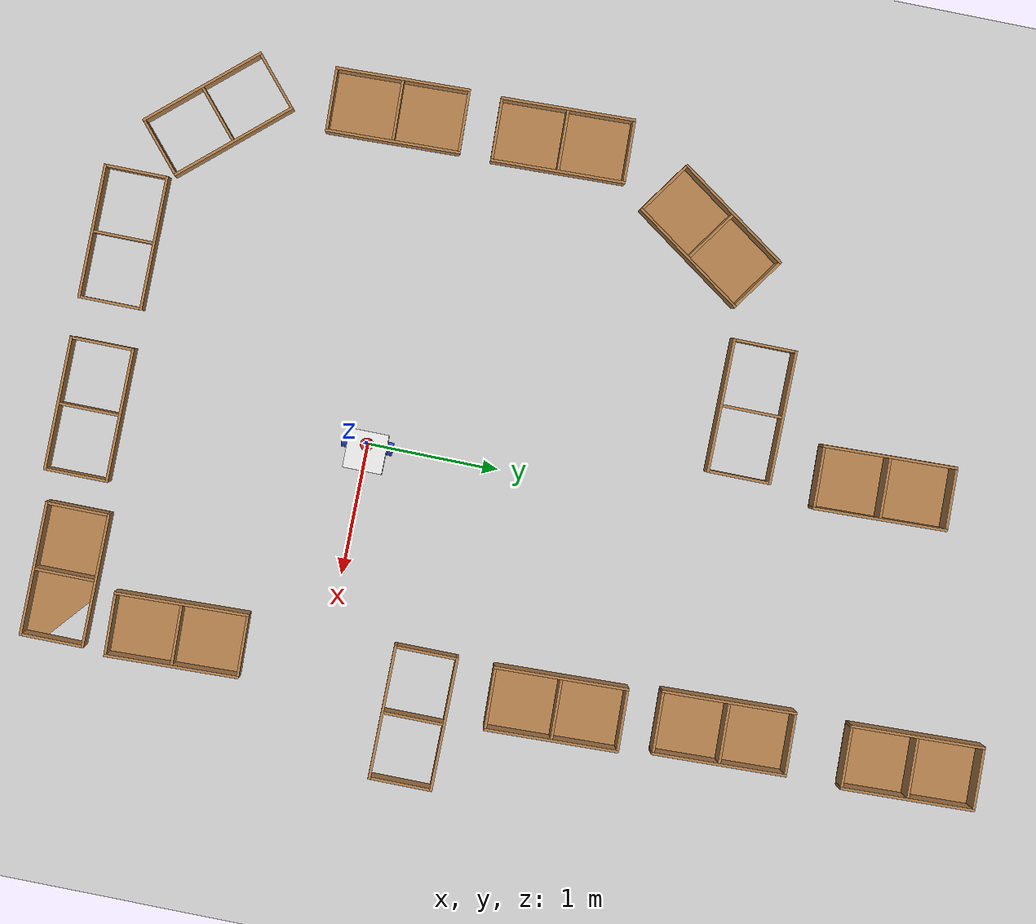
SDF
<sdf version="1.7">
 <world name="default">
  <light name="sun" type="directional">
   <pose>0 0 10 0 -0 0</pose>
   <diffuse>0.8 0.8 0.8 1</diffuse>
   <specular>0.2 0.2 0.2 1</specular>
   <attenuation>
    <range>1000</range>
    <constant>0.9</constant>
    <linear>0.01</linear>
    <quadratic>0.001</quadratic>
   </attenuation>
   <direction>-0.5 0.1 -0.9</direction>
   <spot><inner_angle>0</inner_angle><outer_angle>0</outer_angle><falloff>0</falloff></spot>
  </light>
  <model name="ground_plane">
   <static>1</static>
   <link name="link">
    <collision name="collision">
     <geometry><plane><normal>0 0 1</normal><size>100 100</size></plane></geometry>
     <surface>
      <contact><collide_bitmask>65535</collide_bitmask></contact>
      <friction><ode><mu>100</mu><mu2>50</mu2></ode></friction>
     </surface>
    </collision>
    <visual name="visual">
     <cast_shadows>0</cast_shadows>
     <geometry><plane><normal>0 0 1</normal><size>100 100</size></plane></geometry>
     <material>
      <script><uri>file://media/materials/scripts/gazebo.material</uri><name>Gazebo/Grey</name></script>
     </material>
    </visual>
   </link>
  </model>
  <gravity>0 0 -9.8</gravity>
  <magnetic_field>6e-06 2.3e-05 -4.2e-05</magnetic_field>
  <atmosphere type="adiabatic"/>
  <physics type="ode">
   <max_step_size>0.001</max_step_size>
   <real_time_factor>1</real_time_factor>
   <real_time_update_rate>1000</real_time_update_rate>
  </physics>
  <scene><ambient>0.4 0.4 0.4 1</ambient><background>0.7 0.7 0.7 1</background><shadows>1</shadows></scene>
  <audio><device>default</device></audio>
  <spherical_coordinates>
   <surface_model>EARTH_WGS84</surface_model>
   <latitude_deg>0</latitude_deg>
   <longitude_deg>0</longitude_deg>
   <elevation>0</elevation>
   <heading_deg>0</heading_deg>
  </spherical_coordinates>
  <model name="my_bot">
   <link name="base_link">
    <inertial>
     <pose>0.055714 0 0.078571 0 -0 0</pose>
     <mass>0.7</mass>
     <inertia>
      <ixx>0.0064169</ixx>
      <ixy>0</ixy>
      <ixz>0.00118929</ixz>
      <iyy>0.00745405</iyy>
      <iyz>0</iyz>
      <izz>0.00876214</izz>
     </inertia>
    </inertial>
    <collision name="base_link_fixed_joint_lump__chassis_collision">
     <pose>0.05 0 0.075 0 -0 0</pose>
     <geometry><box><size>0.3 0.3 0.15</size></box></geometry>
    </collision>
    <collision name="base_link_fixed_joint_lump__caster_wheel_collision_1">
     <pose>0.14 0 0 0 -0 0</pose>
     <geometry><sphere><radius>0.05</radius></sphere></geometry>
     <surface><friction><ode><mu>0.001</mu><mu2>0.001</mu2></ode></friction></surface>
    </collision>
    <collision name="base_link_fixed_joint_lump__laser_frame_collision_2">
     <pose>0 0 0.175 0 -0 0</pose>
     <geometry><cylinder><length>0.04</length><radius>0.05</radius></cylinder></geometry>
    </collision>
    <visual name="base_link_fixed_joint_lump__chassis_visual">
     <pose>0.05 0 0.075 0 -0 0</pose>
     <geometry><box><size>0.3 0.3 0.15</size></box></geometry>
     <material>
      <script><name>Gazebo/White</name><uri>file://media/materials/scripts/gazebo.material</uri></script>
     </material>
    </visual>
    <visual name="base_link_fixed_joint_lump__caster_wheel_visual_1">
     <pose>0.14 0 0 0 -0 0</pose>
     <geometry><sphere><radius>0.05</radius></sphere></geometry>
     <material>
      <script><name>Gazebo/Black</name><uri>file://media/materials/scripts/gazebo.material</uri></script>
     </material>
    </visual>
    <visual name="base_link_fixed_joint_lump__laser_frame_visual_2">
     <pose>0 0 0.175 0 -0 0</pose>
     <geometry><cylinder><length>0.04</length><radius>0.05</radius></cylinder></geometry>
     <material>
      <script><name>Gazebo/Red</name><uri>file://media/materials/scripts/gazebo.material</uri></script>
     </material>
    </visual>
    <sensor name="laser" type="ray">
     <visualize>1</visualize>
     <update_rate>10</update_rate>
     <ray>
      <scan>
       <horizontal>
        <samples>360</samples>
        <min_angle>-3.14</min_angle>
        <max_angle>3.14</max_angle>
        <resolution>1</resolution>
       </horizontal>
       <vertical><samples>1</samples><min_angle>0</min_angle><max_angle>0</max_angle></vertical>
      </scan>
      <range><min>0.3</min><max>12</max></range>
     </ray>
     <plugin name="laser_controller" filename="libgazebo_ros_ray_sensor.so">
      <ros><argument>~/out:=scan</argument></ros>
      <output_type>sensor_msgs/LaserScan</output_type>
      <frame_name>laser_frame</frame_name>
     </plugin>
     <pose>0 0 0.175 0 -0 0</pose>
    </sensor>
   </link>
   <joint name="left_wheel_joint" type="revolute">
    <pose relative_to="base_link">0 0.175 0 -1.5708 0 0</pose>
    <parent>base_link</parent>
    <child>left_wheel</child>
    <axis>
     <xyz>0 0 1</xyz>
     <limit><lower>-1e+16</lower><upper>1e+16</upper></limit>
     <dynamics><spring_reference>0</spring_reference><spring_stiffness>0</spring_stiffness></dynamics>
    </axis>
   </joint>
   <link name="left_wheel">
    <pose relative_to="left_wheel_joint">0 0 0 0 -0 0</pose>
    <inertial>
     <mass>0.1</mass>
     <inertia>
      <ixx>7.58333e-05</ixx>
      <ixy>0</ixy>
      <ixz>0</ixz>
      <iyy>7.58333e-05</iyy>
      <iyz>0</iyz>
      <izz>0.000125</izz>
     </inertia>
    </inertial>
    <collision name="left_wheel_collision">
     <geometry><cylinder><length>0.04</length><radius>0.05</radius></cylinder></geometry>
    </collision>
    <visual name="left_wheel_visual">
     <geometry><cylinder><length>0.04</length><radius>0.05</radius></cylinder></geometry>
     <material>
      <script><name>Gazebo/Blue</name><uri>file://media/materials/scripts/gazebo.material</uri></script>
     </material>
    </visual>
   </link>
   <joint name="right_wheel_joint" type="revolute">
    <pose relative_to="base_link">0 -0.175 0 1.5708 -0 0</pose>
    <parent>base_link</parent>
    <child>right_wheel</child>
    <axis>
     <xyz>0 0 -1</xyz>
     <limit><lower>-1e+16</lower><upper>1e+16</upper></limit>
     <dynamics><spring_reference>0</spring_reference><spring_stiffness>0</spring_stiffness></dynamics>
    </axis>
   </joint>
   <link name="right_wheel">
    <pose relative_to="right_wheel_joint">0 0 0 0 -0 0</pose>
    <inertial>
     <mass>0.1</mass>
     <inertia>
      <ixx>7.58333e-05</ixx>
      <ixy>0</ixy>
      <ixz>0</ixz>
      <iyy>7.58333e-05</iyy>
      <iyz>0</iyz>
      <izz>0.000125</izz>
     </inertia>
    </inertial>
    <collision name="right_wheel_collision">
     <geometry><cylinder><length>0.04</length><radius>0.05</radius></cylinder></geometry>
    </collision>
    <visual name="right_wheel_visual">
     <geometry><cylinder><length>0.04</length><radius>0.05</radius></cylinder></geometry>
     <material>
      <script><name>Gazebo/Blue</name><uri>file://media/materials/scripts/gazebo.material</uri></script>
     </material>
    </visual>
   </link>
   <static>0</static>
   <plugin name="diff_drive" filename="libgazebo_ros_diff_drive.so">
    <left_joint>left_wheel_joint</left_joint>
    <right_joint>right_wheel_joint</right_joint>
    <wheel_separation>0.35</wheel_separation>
    <wheel_diameter>0.1</wheel_diameter>
    <max_wheel_torque>200</max_wheel_torque>
    <max_wheel_acceleration>10.0</max_wheel_acceleration>
    <odometry_frame>odom</odometry_frame>
    <robot_base_frame>base_link</robot_base_frame>
    <publish_odom>1</publish_odom>
    <publish_odom_tf>1</publish_odom_tf>
    <publish_wheel_tf>1</publish_wheel_tf>
   </plugin>
   <pose>0.006526 4.3e-05 0.05 0 1e-06 0.000159</pose>
  </model>
  <model name="cabinet">
   <static>1</static>
   <link name="cabinet_bottom_plate">
    <inertial>
     <pose>0 0 -1 0 -0 0</pose>
     <inertia><ixx>2.05</ixx><ixy>0</ixy><ixz>0</ixz><iyy>2.05</iyy><iyz>0</iyz><izz>2.05</izz></inertia>
     <mass>25</mass>
    </inertial>
    <collision name="cabinet_bottom_plate_geom">
     <pose>0 0 0.01 0 -0 0</pose>
     <geometry><box><size>0.45 0.45 0.02</size></box></geometry>
    </collision>
    <visual name="cabinet_bottom_plate_geom_visual">
     <pose>0 0 0.01 0 -0 0</pose>
     <geometry><box><size>0.45 0.45 0.02</size></box></geometry>
     <material>
      <script><uri>file://media/materials/scripts/gazebo.material</uri><name>Gazebo/Wood</name></script>
     </material>
    </visual>
    <collision name="cabinet_bottom_plate_geom_cabinet_back_plate">
     <pose>0.235 0 0.51 0 -0 0</pose>
     <geometry><box><size>0.02 0.45 1.02</size></box></geometry>
    </collision>
    <visual name="cabinet_bottom_plate_geom_cabinet_back_plate_visual">
     <pose>0.235 0 0.51 0 -0 0</pose>
     <geometry><box><size>0.02 0.45 1.02</size></box></geometry>
     <material>
      <script><uri>file://media/materials/scripts/gazebo.material</uri><name>Gazebo/Wood</name></script>
     </material>
    </visual>
    <collision name="cabinet_bottom_plate_geom_cabinet_left_plate">
     <pose>0 0.235 0.51 0 -0 0</pose>
     <geometry><box><size>0.45 0.02 1.02</size></box></geometry>
    </collision>
    <visual name="cabinet_bottom_plate_geom_cabinet_left_plate_visual">
     <pose>0 0.235 0.51 0 -0 0</pose>
     <geometry><box><size>0.45 0.02 1.02</size></box></geometry>
     <material>
      <script><uri>file://media/materials/scripts/gazebo.material</uri><name>Gazebo/Wood</name></script>
     </material>
    </visual>
    <collision name="cabinet_bottom_plate_geom_cabinet_middle_plate">
     <pose>0 0 0.51 0 -0 0</pose>
     <geometry><box><size>0.45 0.45 0.02</size></box></geometry>
    </collision>
    <visual name="cabinet_bottom_plate_geom_cabinet_middle_plate_visual">
     <pose>0 0 0.51 0 -0 0</pose>
     <geometry><box><size>0.45 0.45 0.02</size></box></geometry>
     <material>
      <script><uri>file://media/materials/scripts/gazebo.material</uri><name>Gazebo/Wood</name></script>
     </material>
    </visual>
    <collision name="cabinet_bottom_plate_geom_cabinet_right_plate">
     <pose>0 -0.235 0.51 0 -0 0</pose>
     <geometry><box><size>0.45 0.02 1.02</size></box></geometry>
    </collision>
    <visual name="cabinet_bottom_plate_geom_cabinet_right_plate_visual">
     <pose>0 -0.235 0.51 0 -0 0</pose>
     <geometry><box><size>0.45 0.02 1.02</size></box></geometry>
     <material>
      <script><uri>file://media/materials/scripts/gazebo.material</uri><name>Gazebo/Wood</name></script>
     </material>
    </visual>
    <collision name="cabinet_bottom_plate_geom_cabinet_top_plate">
     <pose>0 0 1.01 0 -0 0</pose>
     <geometry><box><size>0.45 0.45 0.02</size></box></geometry>
    </collision>
    <visual name="cabinet_bottom_plate_geom_cabinet_top_plate_visual">
     <pose>0 0 1.01 0 -0 0</pose>
     <geometry><box><size>0.45 0.45 0.02</size></box></geometry>
     <material>
      <script><uri>file://media/materials/scripts/gazebo.material</uri><name>Gazebo/Wood</name></script>
     </material>
    </visual>
   </link>
   <pose>-1.66968 -2.08865 0.198475 -2.27754 1.54777 -2.2778</pose>
  </model>
  <model name="cabinet_clone">
   <static>1</static>
   <link name="cabinet_bottom_plate">
    <inertial>
     <pose>0 0 -1 0 -0 0</pose>
     <inertia><ixx>2.05</ixx><ixy>0</ixy><ixz>0</ixz><iyy>2.05</iyy><iyz>0</iyz><izz>2.05</izz></inertia>
     <mass>25</mass>
    </inertial>
    <collision name="cabinet_bottom_plate_geom">
     <pose>0 0 0.01 0 -0 0</pose>
     <geometry><box><size>0.45 0.45 0.02</size></box></geometry>
    </collision>
    <visual name="cabinet_bottom_plate_geom_visual">
     <pose>0 0 0.01 0 -0 0</pose>
     <geometry><box><size>0.45 0.45 0.02</size></box></geometry>
     <material>
      <script><uri>file://media/materials/scripts/gazebo.material</uri><name>Gazebo/Wood</name></script>
     </material>
    </visual>
    <collision name="cabinet_bottom_plate_geom_cabinet_back_plate">
     <pose>0.235 0 0.51 0 -0 0</pose>
     <geometry><box><size>0.02 0.45 1.02</size></box></geometry>
    </collision>
    <visual name="cabinet_bottom_plate_geom_cabinet_back_plate_visual">
     <pose>0.235 0 0.51 0 -0 0</pose>
     <geometry><box><size>0.02 0.45 1.02</size></box></geometry>
     <material>
      <script><uri>file://media/materials/scripts/gazebo.material</uri><name>Gazebo/Wood</name></script>
     </material>
    </visual>
    <collision name="cabinet_bottom_plate_geom_cabinet_left_plate">
     <pose>0 0.235 0.51 0 -0 0</pose>
     <geometry><box><size>0.45 0.02 1.02</size></box></geometry>
    </collision>
    <visual name="cabinet_bottom_plate_geom_cabinet_left_plate_visual">
     <pose>0 0.235 0.51 0 -0 0</pose>
     <geometry><box><size>0.45 0.02 1.02</size></box></geometry>
     <material>
      <script><uri>file://media/materials/scripts/gazebo.material</uri><name>Gazebo/Wood</name></script>
     </material>
    </visual>
    <collision name="cabinet_bottom_plate_geom_cabinet_middle_plate">
     <pose>0 0 0.51 0 -0 0</pose>
     <geometry><box><size>0.45 0.45 0.02</size></box></geometry>
    </collision>
    <visual name="cabinet_bottom_plate_geom_cabinet_middle_plate_visual">
     <pose>0 0 0.51 0 -0 0</pose>
     <geometry><box><size>0.45 0.45 0.02</size></box></geometry>
     <material>
      <script><uri>file://media/materials/scripts/gazebo.material</uri><name>Gazebo/Wood</name></script>
     </material>
    </visual>
    <collision name="cabinet_bottom_plate_geom_cabinet_right_plate">
     <pose>0 -0.235 0.51 0 -0 0</pose>
     <geometry><box><size>0.45 0.02 1.02</size></box></geometry>
    </collision>
    <visual name="cabinet_bottom_plate_geom_cabinet_right_plate_visual">
     <pose>0 -0.235 0.51 0 -0 0</pose>
     <geometry><box><size>0.45 0.02 1.02</size></box></geometry>
     <material>
      <script><uri>file://media/materials/scripts/gazebo.material</uri><name>Gazebo/Wood</name></script>
     </material>
    </visual>
    <collision name="cabinet_bottom_plate_geom_cabinet_top_plate">
     <pose>0 0 1.01 0 -0 0</pose>
     <geometry><box><size>0.45 0.45 0.02</size></box></geometry>
    </collision>
    <visual name="cabinet_bottom_plate_geom_cabinet_top_plate_visual">
     <pose>0 0 1.01 0 -0 0</pose>
     <geometry><box><size>0.45 0.45 0.02</size></box></geometry>
     <material>
      <script><uri>file://media/materials/scripts/gazebo.material</uri><name>Gazebo/Wood</name></script>
     </material>
    </visual>
   </link>
   <pose>-2.53543 -1.19146 0.179522 -1.42367 1.54777 -2.2778</pose>
  </model>
  <model name="cabinet_clone_1">
   <static>1</static>
   <link name="cabinet_bottom_plate">
    <inertial>
     <pose>0 0 -1 0 -0 0</pose>
     <inertia><ixx>2.05</ixx><ixy>0</ixy><ixz>0</ixz><iyy>2.05</iyy><iyz>0</iyz><izz>2.05</izz></inertia>
     <mass>25</mass>
    </inertial>
    <collision name="cabinet_bottom_plate_geom">
     <pose>0 0 0.01 0 -0 0</pose>
     <geometry><box><size>0.45 0.45 0.02</size></box></geometry>
    </collision>
    <visual name="cabinet_bottom_plate_geom_visual">
     <pose>0 0 0.01 0 -0 0</pose>
     <geometry><box><size>0.45 0.45 0.02</size></box></geometry>
     <material>
      <script><uri>file://media/materials/scripts/gazebo.material</uri><name>Gazebo/Wood</name></script>
     </material>
    </visual>
    <collision name="cabinet_bottom_plate_geom_cabinet_back_plate">
     <pose>0.235 0 0.51 0 -0 0</pose>
     <geometry><box><size>0.02 0.45 1.02</size></box></geometry>
    </collision>
    <visual name="cabinet_bottom_plate_geom_cabinet_back_plate_visual">
     <pose>0.235 0 0.51 0 -0 0</pose>
     <geometry><box><size>0.02 0.45 1.02</size></box></geometry>
     <material>
      <script><uri>file://media/materials/scripts/gazebo.material</uri><name>Gazebo/Wood</name></script>
     </material>
    </visual>
    <collision name="cabinet_bottom_plate_geom_cabinet_left_plate">
     <pose>0 0.235 0.51 0 -0 0</pose>
     <geometry><box><size>0.45 0.02 1.02</size></box></geometry>
    </collision>
    <visual name="cabinet_bottom_plate_geom_cabinet_left_plate_visual">
     <pose>0 0.235 0.51 0 -0 0</pose>
     <geometry><box><size>0.45 0.02 1.02</size></box></geometry>
     <material>
      <script><uri>file://media/materials/scripts/gazebo.material</uri><name>Gazebo/Wood</name></script>
     </material>
    </visual>
    <collision name="cabinet_bottom_plate_geom_cabinet_middle_plate">
     <pose>0 0 0.51 0 -0 0</pose>
     <geometry><box><size>0.45 0.45 0.02</size></box></geometry>
    </collision>
    <visual name="cabinet_bottom_plate_geom_cabinet_middle_plate_visual">
     <pose>0 0 0.51 0 -0 0</pose>
     <geometry><box><size>0.45 0.45 0.02</size></box></geometry>
     <material>
      <script><uri>file://media/materials/scripts/gazebo.material</uri><name>Gazebo/Wood</name></script>
     </material>
    </visual>
    <collision name="cabinet_bottom_plate_geom_cabinet_right_plate">
     <pose>0 -0.235 0.51 0 -0 0</pose>
     <geometry><box><size>0.45 0.02 1.02</size></box></geometry>
    </collision>
    <visual name="cabinet_bottom_plate_geom_cabinet_right_plate_visual">
     <pose>0 -0.235 0.51 0 -0 0</pose>
     <geometry><box><size>0.45 0.02 1.02</size></box></geometry>
     <material>
      <script><uri>file://media/materials/scripts/gazebo.material</uri><name>Gazebo/Wood</name></script>
     </material>
    </visual>
    <collision name="cabinet_bottom_plate_geom_cabinet_top_plate">
     <pose>0 0 1.01 0 -0 0</pose>
     <geometry><box><size>0.45 0.45 0.02</size></box></geometry>
    </collision>
    <visual name="cabinet_bottom_plate_geom_cabinet_top_plate_visual">
     <pose>0 0 1.01 0 -0 0</pose>
     <geometry><box><size>0.45 0.45 0.02</size></box></geometry>
     <material>
      <script><uri>file://media/materials/scripts/gazebo.material</uri><name>Gazebo/Wood</name></script>
     </material>
    </visual>
   </link>
   <pose>-1.31516 2.77217 0.205245 -2.27754 1.54777 -2.2778</pose>
  </model>
  <model name="cabinet_clone_2">
   <static>1</static>
   <link name="cabinet_bottom_plate">
    <inertial>
     <pose>0 0 -1 0 -0 0</pose>
     <inertia><ixx>2.05</ixx><ixy>0</ixy><ixz>0</ixz><iyy>2.05</iyy><iyz>0</iyz><izz>2.05</izz></inertia>
     <mass>25</mass>
    </inertial>
    <collision name="cabinet_bottom_plate_geom">
     <pose>0 0 0.01 0 -0 0</pose>
     <geometry><box><size>0.45 0.45 0.02</size></box></geometry>
    </collision>
    <visual name="cabinet_bottom_plate_geom_visual">
     <pose>0 0 0.01 0 -0 0</pose>
     <geometry><box><size>0.45 0.45 0.02</size></box></geometry>
     <material>
      <script><uri>file://media/materials/scripts/gazebo.material</uri><name>Gazebo/Wood</name></script>
     </material>
    </visual>
    <collision name="cabinet_bottom_plate_geom_cabinet_back_plate">
     <pose>0.235 0 0.51 0 -0 0</pose>
     <geometry><box><size>0.02 0.45 1.02</size></box></geometry>
    </collision>
    <visual name="cabinet_bottom_plate_geom_cabinet_back_plate_visual">
     <pose>0.235 0 0.51 0 -0 0</pose>
     <geometry><box><size>0.02 0.45 1.02</size></box></geometry>
     <material>
      <script><uri>file://media/materials/scripts/gazebo.material</uri><name>Gazebo/Wood</name></script>
     </material>
    </visual>
    <collision name="cabinet_bottom_plate_geom_cabinet_left_plate">
     <pose>0 0.235 0.51 0 -0 0</pose>
     <geometry><box><size>0.45 0.02 1.02</size></box></geometry>
    </collision>
    <visual name="cabinet_bottom_plate_geom_cabinet_left_plate_visual">
     <pose>0 0.235 0.51 0 -0 0</pose>
     <geometry><box><size>0.45 0.02 1.02</size></box></geometry>
     <material>
      <script><uri>file://media/materials/scripts/gazebo.material</uri><name>Gazebo/Wood</name></script>
     </material>
    </visual>
    <collision name="cabinet_bottom_plate_geom_cabinet_middle_plate">
     <pose>0 0 0.51 0 -0 0</pose>
     <geometry><box><size>0.45 0.45 0.02</size></box></geometry>
    </collision>
    <visual name="cabinet_bottom_plate_geom_cabinet_middle_plate_visual">
     <pose>0 0 0.51 0 -0 0</pose>
     <geometry><box><size>0.45 0.45 0.02</size></box></geometry>
     <material>
      <script><uri>file://media/materials/scripts/gazebo.material</uri><name>Gazebo/Wood</name></script>
     </material>
    </visual>
    <collision name="cabinet_bottom_plate_geom_cabinet_right_plate">
     <pose>0 -0.235 0.51 0 -0 0</pose>
     <geometry><box><size>0.45 0.02 1.02</size></box></geometry>
    </collision>
    <visual name="cabinet_bottom_plate_geom_cabinet_right_plate_visual">
     <pose>0 -0.235 0.51 0 -0 0</pose>
     <geometry><box><size>0.45 0.02 1.02</size></box></geometry>
     <material>
      <script><uri>file://media/materials/scripts/gazebo.material</uri><name>Gazebo/Wood</name></script>
     </material>
    </visual>
    <collision name="cabinet_bottom_plate_geom_cabinet_top_plate">
     <pose>0 0 1.01 0 -0 0</pose>
     <geometry><box><size>0.45 0.45 0.02</size></box></geometry>
    </collision>
    <visual name="cabinet_bottom_plate_geom_cabinet_top_plate_visual">
     <pose>0 0 1.01 0 -0 0</pose>
     <geometry><box><size>0.45 0.45 0.02</size></box></geometry>
     <material>
      <script><uri>file://media/materials/scripts/gazebo.material</uri><name>Gazebo/Wood</name></script>
     </material>
    </visual>
   </link>
   <pose>1.69004 -1.61833 0.260382 2.40281 1.54777 -2.2778</pose>
  </model>
  <model name="cabinet_clone_3">
   <static>1</static>
   <link name="cabinet_bottom_plate">
    <inertial>
     <pose>0 0 -1 0 -0 0</pose>
     <inertia><ixx>2.05</ixx><ixy>0</ixy><ixz>0</ixz><iyy>2.05</iyy><iyz>0</iyz><izz>2.05</izz></inertia>
     <mass>25</mass>
    </inertial>
    <collision name="cabinet_bottom_plate_geom">
     <pose>0 0 0.01 0 -0 0</pose>
     <geometry><box><size>0.45 0.45 0.02</size></box></geometry>
    </collision>
    <visual name="cabinet_bottom_plate_geom_visual">
     <pose>0 0 0.01 0 -0 0</pose>
     <geometry><box><size>0.45 0.45 0.02</size></box></geometry>
     <material>
      <script><uri>file://media/materials/scripts/gazebo.material</uri><name>Gazebo/Wood</name></script>
     </material>
    </visual>
    <collision name="cabinet_bottom_plate_geom_cabinet_back_plate">
     <pose>0.235 0 0.51 0 -0 0</pose>
     <geometry><box><size>0.02 0.45 1.02</size></box></geometry>
    </collision>
    <visual name="cabinet_bottom_plate_geom_cabinet_back_plate_visual">
     <pose>0.235 0 0.51 0 -0 0</pose>
     <geometry><box><size>0.02 0.45 1.02</size></box></geometry>
     <material>
      <script><uri>file://media/materials/scripts/gazebo.material</uri><name>Gazebo/Wood</name></script>
     </material>
    </visual>
    <collision name="cabinet_bottom_plate_geom_cabinet_left_plate">
     <pose>0 0.235 0.51 0 -0 0</pose>
     <geometry><box><size>0.45 0.02 1.02</size></box></geometry>
    </collision>
    <visual name="cabinet_bottom_plate_geom_cabinet_left_plate_visual">
     <pose>0 0.235 0.51 0 -0 0</pose>
     <geometry><box><size>0.45 0.02 1.02</size></box></geometry>
     <material>
      <script><uri>file://media/materials/scripts/gazebo.material</uri><name>Gazebo/Wood</name></script>
     </material>
    </visual>
    <collision name="cabinet_bottom_plate_geom_cabinet_middle_plate">
     <pose>0 0 0.51 0 -0 0</pose>
     <geometry><box><size>0.45 0.45 0.02</size></box></geometry>
    </collision>
    <visual name="cabinet_bottom_plate_geom_cabinet_middle_plate_visual">
     <pose>0 0 0.51 0 -0 0</pose>
     <geometry><box><size>0.45 0.45 0.02</size></box></geometry>
     <material>
      <script><uri>file://media/materials/scripts/gazebo.material</uri><name>Gazebo/Wood</name></script>
     </material>
    </visual>
    <collision name="cabinet_bottom_plate_geom_cabinet_right_plate">
     <pose>0 -0.235 0.51 0 -0 0</pose>
     <geometry><box><size>0.45 0.02 1.02</size></box></geometry>
    </collision>
    <visual name="cabinet_bottom_plate_geom_cabinet_right_plate_visual">
     <pose>0 -0.235 0.51 0 -0 0</pose>
     <geometry><box><size>0.45 0.02 1.02</size></box></geometry>
     <material>
      <script><uri>file://media/materials/scripts/gazebo.material</uri><name>Gazebo/Wood</name></script>
     </material>
    </visual>
    <collision name="cabinet_bottom_plate_geom_cabinet_top_plate">
     <pose>0 0 1.01 0 -0 0</pose>
     <geometry><box><size>0.45 0.45 0.02</size></box></geometry>
    </collision>
    <visual name="cabinet_bottom_plate_geom_cabinet_top_plate_visual">
     <pose>0 0 1.01 0 -0 0</pose>
     <geometry><box><size>0.45 0.45 0.02</size></box></geometry>
     <material>
      <script><uri>file://media/materials/scripts/gazebo.material</uri><name>Gazebo/Wood</name></script>
     </material>
    </visual>
   </link>
   <pose>0.885832 -2.01716 0.229914 -2.27754 1.54777 -2.2778</pose>
  </model>
  <model name="cabinet_clone_4">
   <static>1</static>
   <link name="cabinet_bottom_plate">
    <inertial>
     <pose>0 0 -1 0 -0 0</pose>
     <inertia><ixx>2.05</ixx><ixy>0</ixy><ixz>0</ixz><iyy>2.05</iyy><iyz>0</iyz><izz>2.05</izz></inertia>
     <mass>25</mass>
    </inertial>
    <collision name="cabinet_bottom_plate_geom">
     <pose>0 0 0.01 0 -0 0</pose>
     <geometry><box><size>0.45 0.45 0.02</size></box></geometry>
    </collision>
    <visual name="cabinet_bottom_plate_geom_visual">
     <pose>0 0 0.01 0 -0 0</pose>
     <geometry><box><size>0.45 0.45 0.02</size></box></geometry>
     <material>
      <script><uri>file://media/materials/scripts/gazebo.material</uri><name>Gazebo/Wood</name></script>
     </material>
    </visual>
    <collision name="cabinet_bottom_plate_geom_cabinet_back_plate">
     <pose>0.235 0 0.51 0 -0 0</pose>
     <geometry><box><size>0.02 0.45 1.02</size></box></geometry>
    </collision>
    <visual name="cabinet_bottom_plate_geom_cabinet_back_plate_visual">
     <pose>0.235 0 0.51 0 -0 0</pose>
     <geometry><box><size>0.02 0.45 1.02</size></box></geometry>
     <material>
      <script><uri>file://media/materials/scripts/gazebo.material</uri><name>Gazebo/Wood</name></script>
     </material>
    </visual>
    <collision name="cabinet_bottom_plate_geom_cabinet_left_plate">
     <pose>0 0.235 0.51 0 -0 0</pose>
     <geometry><box><size>0.45 0.02 1.02</size></box></geometry>
    </collision>
    <visual name="cabinet_bottom_plate_geom_cabinet_left_plate_visual">
     <pose>0 0.235 0.51 0 -0 0</pose>
     <geometry><box><size>0.45 0.02 1.02</size></box></geometry>
     <material>
      <script><uri>file://media/materials/scripts/gazebo.material</uri><name>Gazebo/Wood</name></script>
     </material>
    </visual>
    <collision name="cabinet_bottom_plate_geom_cabinet_middle_plate">
     <pose>0 0 0.51 0 -0 0</pose>
     <geometry><box><size>0.45 0.45 0.02</size></box></geometry>
    </collision>
    <visual name="cabinet_bottom_plate_geom_cabinet_middle_plate_visual">
     <pose>0 0 0.51 0 -0 0</pose>
     <geometry><box><size>0.45 0.45 0.02</size></box></geometry>
     <material>
      <script><uri>file://media/materials/scripts/gazebo.material</uri><name>Gazebo/Wood</name></script>
     </material>
    </visual>
    <collision name="cabinet_bottom_plate_geom_cabinet_right_plate">
     <pose>0 -0.235 0.51 0 -0 0</pose>
     <geometry><box><size>0.45 0.02 1.02</size></box></geometry>
    </collision>
    <visual name="cabinet_bottom_plate_geom_cabinet_right_plate_visual">
     <pose>0 -0.235 0.51 0 -0 0</pose>
     <geometry><box><size>0.45 0.02 1.02</size></box></geometry>
     <material>
      <script><uri>file://media/materials/scripts/gazebo.material</uri><name>Gazebo/Wood</name></script>
     </material>
    </visual>
    <collision name="cabinet_bottom_plate_geom_cabinet_top_plate">
     <pose>0 0 1.01 0 -0 0</pose>
     <geometry><box><size>0.45 0.45 0.02</size></box></geometry>
    </collision>
    <visual name="cabinet_bottom_plate_geom_cabinet_top_plate_visual">
     <pose>0 0 1.01 0 -0 0</pose>
     <geometry><box><size>0.45 0.45 0.02</size></box></geometry>
     <material>
      <script><uri>file://media/materials/scripts/gazebo.material</uri><name>Gazebo/Wood</name></script>
     </material>
    </visual>
   </link>
   <pose>-0.35893 -2.08399 0.208955 -2.27754 1.54777 -2.2778</pose>
  </model>
  <model name="cabinet_clone_0_clone">
   <static>1</static>
   <link name="cabinet_bottom_plate">
    <inertial>
     <pose>0 0 -1 0 -0 0</pose>
     <inertia><ixx>2.05</ixx><ixy>0</ixy><ixz>0</ixz><iyy>2.05</iyy><iyz>0</iyz><izz>2.05</izz></inertia>
     <mass>25</mass>
    </inertial>
    <collision name="cabinet_bottom_plate_geom">
     <pose>0 0 0.01 0 -0 0</pose>
     <geometry><box><size>0.45 0.45 0.02</size></box></geometry>
    </collision>
    <visual name="cabinet_bottom_plate_geom_visual">
     <pose>0 0 0.01 0 -0 0</pose>
     <geometry><box><size>0.45 0.45 0.02</size></box></geometry>
     <material>
      <script><uri>file://media/materials/scripts/gazebo.material</uri><name>Gazebo/Wood</name></script>
     </material>
    </visual>
    <collision name="cabinet_bottom_plate_geom_cabinet_back_plate">
     <pose>0.235 0 0.51 0 -0 0</pose>
     <geometry><box><size>0.02 0.45 1.02</size></box></geometry>
    </collision>
    <visual name="cabinet_bottom_plate_geom_cabinet_back_plate_visual">
     <pose>0.235 0 0.51 0 -0 0</pose>
     <geometry><box><size>0.02 0.45 1.02</size></box></geometry>
     <material>
      <script><uri>file://media/materials/scripts/gazebo.material</uri><name>Gazebo/Wood</name></script>
     </material>
    </visual>
    <collision name="cabinet_bottom_plate_geom_cabinet_left_plate">
     <pose>0 0.235 0.51 0 -0 0</pose>
     <geometry><box><size>0.45 0.02 1.02</size></box></geometry>
    </collision>
    <visual name="cabinet_bottom_plate_geom_cabinet_left_plate_visual">
     <pose>0 0.235 0.51 0 -0 0</pose>
     <geometry><box><size>0.45 0.02 1.02</size></box></geometry>
     <material>
      <script><uri>file://media/materials/scripts/gazebo.material</uri><name>Gazebo/Wood</name></script>
     </material>
    </visual>
    <collision name="cabinet_bottom_plate_geom_cabinet_middle_plate">
     <pose>0 0 0.51 0 -0 0</pose>
     <geometry><box><size>0.45 0.45 0.02</size></box></geometry>
    </collision>
    <visual name="cabinet_bottom_plate_geom_cabinet_middle_plate_visual">
     <pose>0 0 0.51 0 -0 0</pose>
     <geometry><box><size>0.45 0.45 0.02</size></box></geometry>
     <material>
      <script><uri>file://media/materials/scripts/gazebo.material</uri><name>Gazebo/Wood</name></script>
     </material>
    </visual>
    <collision name="cabinet_bottom_plate_geom_cabinet_right_plate">
     <pose>0 -0.235 0.51 0 -0 0</pose>
     <geometry><box><size>0.45 0.02 1.02</size></box></geometry>
    </collision>
    <visual name="cabinet_bottom_plate_geom_cabinet_right_plate_visual">
     <pose>0 -0.235 0.51 0 -0 0</pose>
     <geometry><box><size>0.45 0.02 1.02</size></box></geometry>
     <material>
      <script><uri>file://media/materials/scripts/gazebo.material</uri><name>Gazebo/Wood</name></script>
     </material>
    </visual>
    <collision name="cabinet_bottom_plate_geom_cabinet_top_plate">
     <pose>0 0 1.01 0 -0 0</pose>
     <geometry><box><size>0.45 0.45 0.02</size></box></geometry>
    </collision>
    <visual name="cabinet_bottom_plate_geom_cabinet_top_plate_visual">
     <pose>0 0 1.01 0 -0 0</pose>
     <geometry><box><size>0.45 0.45 0.02</size></box></geometry>
     <material>
      <script><uri>file://media/materials/scripts/gazebo.material</uri><name>Gazebo/Wood</name></script>
     </material>
    </visual>
   </link>
   <pose>1.42895 0.742884 0.186252 -2.27754 1.54777 -2.2778</pose>
  </model>
  <model name="cabinet_clone_2_clone">
   <static>1</static>
   <link name="cabinet_bottom_plate">
    <inertial>
     <pose>0 0 -1 0 -0 0</pose>
     <inertia><ixx>2.05</ixx><ixy>0</ixy><ixz>0</ixz><iyy>2.05</iyy><iyz>0</iyz><izz>2.05</izz></inertia>
     <mass>25</mass>
    </inertial>
    <collision name="cabinet_bottom_plate_geom">
     <pose>0 0 0.01 0 -0 0</pose>
     <geometry><box><size>0.45 0.45 0.02</size></box></geometry>
    </collision>
    <visual name="cabinet_bottom_plate_geom_visual">
     <pose>0 0 0.01 0 -0 0</pose>
     <geometry><box><size>0.45 0.45 0.02</size></box></geometry>
     <material>
      <script><uri>file://media/materials/scripts/gazebo.material</uri><name>Gazebo/Wood</name></script>
     </material>
    </visual>
    <collision name="cabinet_bottom_plate_geom_cabinet_back_plate">
     <pose>0.235 0 0.51 0 -0 0</pose>
     <geometry><box><size>0.02 0.45 1.02</size></box></geometry>
    </collision>
    <visual name="cabinet_bottom_plate_geom_cabinet_back_plate_visual">
     <pose>0.235 0 0.51 0 -0 0</pose>
     <geometry><box><size>0.02 0.45 1.02</size></box></geometry>
     <material>
      <script><uri>file://media/materials/scripts/gazebo.material</uri><name>Gazebo/Wood</name></script>
     </material>
    </visual>
    <collision name="cabinet_bottom_plate_geom_cabinet_left_plate">
     <pose>0 0.235 0.51 0 -0 0</pose>
     <geometry><box><size>0.45 0.02 1.02</size></box></geometry>
    </collision>
    <visual name="cabinet_bottom_plate_geom_cabinet_left_plate_visual">
     <pose>0 0.235 0.51 0 -0 0</pose>
     <geometry><box><size>0.45 0.02 1.02</size></box></geometry>
     <material>
      <script><uri>file://media/materials/scripts/gazebo.material</uri><name>Gazebo/Wood</name></script>
     </material>
    </visual>
    <collision name="cabinet_bottom_plate_geom_cabinet_middle_plate">
     <pose>0 0 0.51 0 -0 0</pose>
     <geometry><box><size>0.45 0.45 0.02</size></box></geometry>
    </collision>
    <visual name="cabinet_bottom_plate_geom_cabinet_middle_plate_visual">
     <pose>0 0 0.51 0 -0 0</pose>
     <geometry><box><size>0.45 0.45 0.02</size></box></geometry>
     <material>
      <script><uri>file://media/materials/scripts/gazebo.material</uri><name>Gazebo/Wood</name></script>
     </material>
    </visual>
    <collision name="cabinet_bottom_plate_geom_cabinet_right_plate">
     <pose>0 -0.235 0.51 0 -0 0</pose>
     <geometry><box><size>0.45 0.02 1.02</size></box></geometry>
    </collision>
    <visual name="cabinet_bottom_plate_geom_cabinet_right_plate_visual">
     <pose>0 -0.235 0.51 0 -0 0</pose>
     <geometry><box><size>0.45 0.02 1.02</size></box></geometry>
     <material>
      <script><uri>file://media/materials/scripts/gazebo.material</uri><name>Gazebo/Wood</name></script>
     </material>
    </visual>
    <collision name="cabinet_bottom_plate_geom_cabinet_top_plate">
     <pose>0 0 1.01 0 -0 0</pose>
     <geometry><box><size>0.45 0.45 0.02</size></box></geometry>
    </collision>
    <visual name="cabinet_bottom_plate_geom_cabinet_top_plate_visual">
     <pose>0 0 1.01 0 -0 0</pose>
     <geometry><box><size>0.45 0.45 0.02</size></box></geometry>
     <material>
      <script><uri>file://media/materials/scripts/gazebo.material</uri><name>Gazebo/Wood</name></script>
     </material>
    </visual>
   </link>
   <pose>1.67584 1.26627 0.260382 2.40281 1.54777 -2.2778</pose>
  </model>
  <model name="cabinet_clone_2_clone_0">
   <static>1</static>
   <link name="cabinet_bottom_plate">
    <inertial>
     <pose>0 0 -1 0 -0 0</pose>
     <inertia><ixx>2.05</ixx><ixy>0</ixy><ixz>0</ixz><iyy>2.05</iyy><iyz>0</iyz><izz>2.05</izz></inertia>
     <mass>25</mass>
    </inertial>
    <collision name="cabinet_bottom_plate_geom">
     <pose>0 0 0.01 0 -0 0</pose>
     <geometry><box><size>0.45 0.45 0.02</size></box></geometry>
    </collision>
    <visual name="cabinet_bottom_plate_geom_visual">
     <pose>0 0 0.01 0 -0 0</pose>
     <geometry><box><size>0.45 0.45 0.02</size></box></geometry>
     <material>
      <script><uri>file://media/materials/scripts/gazebo.material</uri><name>Gazebo/Wood</name></script>
     </material>
    </visual>
    <collision name="cabinet_bottom_plate_geom_cabinet_back_plate">
     <pose>0.235 0 0.51 0 -0 0</pose>
     <geometry><box><size>0.02 0.45 1.02</size></box></geometry>
    </collision>
    <visual name="cabinet_bottom_plate_geom_cabinet_back_plate_visual">
     <pose>0.235 0 0.51 0 -0 0</pose>
     <geometry><box><size>0.02 0.45 1.02</size></box></geometry>
     <material>
      <script><uri>file://media/materials/scripts/gazebo.material</uri><name>Gazebo/Wood</name></script>
     </material>
    </visual>
    <collision name="cabinet_bottom_plate_geom_cabinet_left_plate">
     <pose>0 0.235 0.51 0 -0 0</pose>
     <geometry><box><size>0.45 0.02 1.02</size></box></geometry>
    </collision>
    <visual name="cabinet_bottom_plate_geom_cabinet_left_plate_visual">
     <pose>0 0.235 0.51 0 -0 0</pose>
     <geometry><box><size>0.45 0.02 1.02</size></box></geometry>
     <material>
      <script><uri>file://media/materials/scripts/gazebo.material</uri><name>Gazebo/Wood</name></script>
     </material>
    </visual>
    <collision name="cabinet_bottom_plate_geom_cabinet_middle_plate">
     <pose>0 0 0.51 0 -0 0</pose>
     <geometry><box><size>0.45 0.45 0.02</size></box></geometry>
    </collision>
    <visual name="cabinet_bottom_plate_geom_cabinet_middle_plate_visual">
     <pose>0 0 0.51 0 -0 0</pose>
     <geometry><box><size>0.45 0.45 0.02</size></box></geometry>
     <material>
      <script><uri>file://media/materials/scripts/gazebo.material</uri><name>Gazebo/Wood</name></script>
     </material>
    </visual>
    <collision name="cabinet_bottom_plate_geom_cabinet_right_plate">
     <pose>0 -0.235 0.51 0 -0 0</pose>
     <geometry><box><size>0.45 0.02 1.02</size></box></geometry>
    </collision>
    <visual name="cabinet_bottom_plate_geom_cabinet_right_plate_visual">
     <pose>0 -0.235 0.51 0 -0 0</pose>
     <geometry><box><size>0.45 0.02 1.02</size></box></geometry>
     <material>
      <script><uri>file://media/materials/scripts/gazebo.material</uri><name>Gazebo/Wood</name></script>
     </material>
    </visual>
    <collision name="cabinet_bottom_plate_geom_cabinet_top_plate">
     <pose>0 0 1.01 0 -0 0</pose>
     <geometry><box><size>0.45 0.45 0.02</size></box></geometry>
    </collision>
    <visual name="cabinet_bottom_plate_geom_cabinet_top_plate_visual">
     <pose>0 0 1.01 0 -0 0</pose>
     <geometry><box><size>0.45 0.45 0.02</size></box></geometry>
     <material>
      <script><uri>file://media/materials/scripts/gazebo.material</uri><name>Gazebo/Wood</name></script>
     </material>
    </visual>
   </link>
   <pose>-2.47201 -0.769951 0.260382 2.40281 1.54777 -2.2778</pose>
  </model>
  <model name="cabinet_clone_2_clone_1">
   <static>1</static>
   <link name="cabinet_bottom_plate">
    <inertial>
     <pose>0 0 -1 0 -0 0</pose>
     <inertia><ixx>2.05</ixx><ixy>0</ixy><ixz>0</ixz><iyy>2.05</iyy><iyz>0</iyz><izz>2.05</izz></inertia>
     <mass>25</mass>
    </inertial>
    <collision name="cabinet_bottom_plate_geom">
     <pose>0 0 0.01 0 -0 0</pose>
     <geometry><box><size>0.45 0.45 0.02</size></box></geometry>
    </collision>
    <visual name="cabinet_bottom_plate_geom_visual">
     <pose>0 0 0.01 0 -0 0</pose>
     <geometry><box><size>0.45 0.45 0.02</size></box></geometry>
     <material>
      <script><uri>file://media/materials/scripts/gazebo.material</uri><name>Gazebo/Wood</name></script>
     </material>
    </visual>
    <collision name="cabinet_bottom_plate_geom_cabinet_back_plate">
     <pose>0.235 0 0.51 0 -0 0</pose>
     <geometry><box><size>0.02 0.45 1.02</size></box></geometry>
    </collision>
    <visual name="cabinet_bottom_plate_geom_cabinet_back_plate_visual">
     <pose>0.235 0 0.51 0 -0 0</pose>
     <geometry><box><size>0.02 0.45 1.02</size></box></geometry>
     <material>
      <script><uri>file://media/materials/scripts/gazebo.material</uri><name>Gazebo/Wood</name></script>
     </material>
    </visual>
    <collision name="cabinet_bottom_plate_geom_cabinet_left_plate">
     <pose>0 0.235 0.51 0 -0 0</pose>
     <geometry><box><size>0.45 0.02 1.02</size></box></geometry>
    </collision>
    <visual name="cabinet_bottom_plate_geom_cabinet_left_plate_visual">
     <pose>0 0.235 0.51 0 -0 0</pose>
     <geometry><box><size>0.45 0.02 1.02</size></box></geometry>
     <material>
      <script><uri>file://media/materials/scripts/gazebo.material</uri><name>Gazebo/Wood</name></script>
     </material>
    </visual>
    <collision name="cabinet_bottom_plate_geom_cabinet_middle_plate">
     <pose>0 0 0.51 0 -0 0</pose>
     <geometry><box><size>0.45 0.45 0.02</size></box></geometry>
    </collision>
    <visual name="cabinet_bottom_plate_geom_cabinet_middle_plate_visual">
     <pose>0 0 0.51 0 -0 0</pose>
     <geometry><box><size>0.45 0.45 0.02</size></box></geometry>
     <material>
      <script><uri>file://media/materials/scripts/gazebo.material</uri><name>Gazebo/Wood</name></script>
     </material>
    </visual>
    <collision name="cabinet_bottom_plate_geom_cabinet_right_plate">
     <pose>0 -0.235 0.51 0 -0 0</pose>
     <geometry><box><size>0.45 0.02 1.02</size></box></geometry>
    </collision>
    <visual name="cabinet_bottom_plate_geom_cabinet_right_plate_visual">
     <pose>0 -0.235 0.51 0 -0 0</pose>
     <geometry><box><size>0.45 0.02 1.02</size></box></geometry>
     <material>
      <script><uri>file://media/materials/scripts/gazebo.material</uri><name>Gazebo/Wood</name></script>
     </material>
    </visual>
    <collision name="cabinet_bottom_plate_geom_cabinet_top_plate">
     <pose>0 0 1.01 0 -0 0</pose>
     <geometry><box><size>0.45 0.45 0.02</size></box></geometry>
    </collision>
    <visual name="cabinet_bottom_plate_geom_cabinet_top_plate_visual">
     <pose>0 0 1.01 0 -0 0</pose>
     <geometry><box><size>0.45 0.45 0.02</size></box></geometry>
     <material>
      <script><uri>file://media/materials/scripts/gazebo.material</uri><name>Gazebo/Wood</name></script>
     </material>
    </visual>
   </link>
   <pose>-2.49506 0.481632 0.260382 2.40281 1.54777 -2.2778</pose>
  </model>
  <model name="cabinet_clone_2_clone_2">
   <static>1</static>
   <link name="cabinet_bottom_plate">
    <inertial>
     <pose>0 0 -1 0 -0 0</pose>
     <inertia><ixx>2.05</ixx><ixy>0</ixy><ixz>0</ixz><iyy>2.05</iyy><iyz>0</iyz><izz>2.05</izz></inertia>
     <mass>25</mass>
    </inertial>
    <collision name="cabinet_bottom_plate_geom">
     <pose>0 0 0.01 0 -0 0</pose>
     <geometry><box><size>0.45 0.45 0.02</size></box></geometry>
    </collision>
    <visual name="cabinet_bottom_plate_geom_visual">
     <pose>0 0 0.01 0 -0 0</pose>
     <geometry><box><size>0.45 0.45 0.02</size></box></geometry>
     <material>
      <script><uri>file://media/materials/scripts/gazebo.material</uri><name>Gazebo/Wood</name></script>
     </material>
    </visual>
    <collision name="cabinet_bottom_plate_geom_cabinet_back_plate">
     <pose>0.235 0 0.51 0 -0 0</pose>
     <geometry><box><size>0.02 0.45 1.02</size></box></geometry>
    </collision>
    <visual name="cabinet_bottom_plate_geom_cabinet_back_plate_visual">
     <pose>0.235 0 0.51 0 -0 0</pose>
     <geometry><box><size>0.02 0.45 1.02</size></box></geometry>
     <material>
      <script><uri>file://media/materials/scripts/gazebo.material</uri><name>Gazebo/Wood</name></script>
     </material>
    </visual>
    <collision name="cabinet_bottom_plate_geom_cabinet_left_plate">
     <pose>0 0.235 0.51 0 -0 0</pose>
     <geometry><box><size>0.45 0.02 1.02</size></box></geometry>
    </collision>
    <visual name="cabinet_bottom_plate_geom_cabinet_left_plate_visual">
     <pose>0 0.235 0.51 0 -0 0</pose>
     <geometry><box><size>0.45 0.02 1.02</size></box></geometry>
     <material>
      <script><uri>file://media/materials/scripts/gazebo.material</uri><name>Gazebo/Wood</name></script>
     </material>
    </visual>
    <collision name="cabinet_bottom_plate_geom_cabinet_middle_plate">
     <pose>0 0 0.51 0 -0 0</pose>
     <geometry><box><size>0.45 0.45 0.02</size></box></geometry>
    </collision>
    <visual name="cabinet_bottom_plate_geom_cabinet_middle_plate_visual">
     <pose>0 0 0.51 0 -0 0</pose>
     <geometry><box><size>0.45 0.45 0.02</size></box></geometry>
     <material>
      <script><uri>file://media/materials/scripts/gazebo.material</uri><name>Gazebo/Wood</name></script>
     </material>
    </visual>
    <collision name="cabinet_bottom_plate_geom_cabinet_right_plate">
     <pose>0 -0.235 0.51 0 -0 0</pose>
     <geometry><box><size>0.45 0.02 1.02</size></box></geometry>
    </collision>
    <visual name="cabinet_bottom_plate_geom_cabinet_right_plate_visual">
     <pose>0 -0.235 0.51 0 -0 0</pose>
     <geometry><box><size>0.45 0.02 1.02</size></box></geometry>
     <material>
      <script><uri>file://media/materials/scripts/gazebo.material</uri><name>Gazebo/Wood</name></script>
     </material>
    </visual>
    <collision name="cabinet_bottom_plate_geom_cabinet_top_plate">
     <pose>0 0 1.01 0 -0 0</pose>
     <geometry><box><size>0.45 0.45 0.02</size></box></geometry>
    </collision>
    <visual name="cabinet_bottom_plate_geom_cabinet_top_plate_visual">
     <pose>0 0 1.01 0 -0 0</pose>
     <geometry><box><size>0.45 0.45 0.02</size></box></geometry>
     <material>
      <script><uri>file://media/materials/scripts/gazebo.material</uri><name>Gazebo/Wood</name></script>
     </material>
    </visual>
   </link>
   <pose>-2.31741 1.79435 0.266156 3.04196 1.54777 -2.2778</pose>
  </model>
  <model name="cabinet_clone_2_clone_clone">
   <static>1</static>
   <link name="cabinet_bottom_plate">
    <inertial>
     <pose>0 0 -1 0 -0 0</pose>
     <inertia><ixx>2.05</ixx><ixy>0</ixy><ixz>0</ixz><iyy>2.05</iyy><iyz>0</iyz><izz>2.05</izz></inertia>
     <mass>25</mass>
    </inertial>
    <collision name="cabinet_bottom_plate_geom">
     <pose>0 0 0.01 0 -0 0</pose>
     <geometry><box><size>0.45 0.45 0.02</size></box></geometry>
    </collision>
    <visual name="cabinet_bottom_plate_geom_visual">
     <pose>0 0 0.01 0 -0 0</pose>
     <geometry><box><size>0.45 0.45 0.02</size></box></geometry>
     <material>
      <script><uri>file://media/materials/scripts/gazebo.material</uri><name>Gazebo/Wood</name></script>
     </material>
    </visual>
    <collision name="cabinet_bottom_plate_geom_cabinet_back_plate">
     <pose>0.235 0 0.51 0 -0 0</pose>
     <geometry><box><size>0.02 0.45 1.02</size></box></geometry>
    </collision>
    <visual name="cabinet_bottom_plate_geom_cabinet_back_plate_visual">
     <pose>0.235 0 0.51 0 -0 0</pose>
     <geometry><box><size>0.02 0.45 1.02</size></box></geometry>
     <material>
      <script><uri>file://media/materials/scripts/gazebo.material</uri><name>Gazebo/Wood</name></script>
     </material>
    </visual>
    <collision name="cabinet_bottom_plate_geom_cabinet_left_plate">
     <pose>0 0.235 0.51 0 -0 0</pose>
     <geometry><box><size>0.45 0.02 1.02</size></box></geometry>
    </collision>
    <visual name="cabinet_bottom_plate_geom_cabinet_left_plate_visual">
     <pose>0 0.235 0.51 0 -0 0</pose>
     <geometry><box><size>0.45 0.02 1.02</size></box></geometry>
     <material>
      <script><uri>file://media/materials/scripts/gazebo.material</uri><name>Gazebo/Wood</name></script>
     </material>
    </visual>
    <collision name="cabinet_bottom_plate_geom_cabinet_middle_plate">
     <pose>0 0 0.51 0 -0 0</pose>
     <geometry><box><size>0.45 0.45 0.02</size></box></geometry>
    </collision>
    <visual name="cabinet_bottom_plate_geom_cabinet_middle_plate_visual">
     <pose>0 0 0.51 0 -0 0</pose>
     <geometry><box><size>0.45 0.45 0.02</size></box></geometry>
     <material>
      <script><uri>file://media/materials/scripts/gazebo.material</uri><name>Gazebo/Wood</name></script>
     </material>
    </visual>
    <collision name="cabinet_bottom_plate_geom_cabinet_right_plate">
     <pose>0 -0.235 0.51 0 -0 0</pose>
     <geometry><box><size>0.45 0.02 1.02</size></box></geometry>
    </collision>
    <visual name="cabinet_bottom_plate_geom_cabinet_right_plate_visual">
     <pose>0 -0.235 0.51 0 -0 0</pose>
     <geometry><box><size>0.45 0.02 1.02</size></box></geometry>
     <material>
      <script><uri>file://media/materials/scripts/gazebo.material</uri><name>Gazebo/Wood</name></script>
     </material>
    </visual>
    <collision name="cabinet_bottom_plate_geom_cabinet_top_plate">
     <pose>0 0 1.01 0 -0 0</pose>
     <geometry><box><size>0.45 0.45 0.02</size></box></geometry>
    </collision>
    <visual name="cabinet_bottom_plate_geom_cabinet_top_plate_visual">
     <pose>0 0 1.01 0 -0 0</pose>
     <geometry><box><size>0.45 0.45 0.02</size></box></geometry>
     <material>
      <script><uri>file://media/materials/scripts/gazebo.material</uri><name>Gazebo/Wood</name></script>
     </material>
    </visual>
   </link>
   <pose>1.60478 2.52767 0.260382 2.40281 1.54777 -2.2778</pose>
  </model>
  <model name="cabinet_clone_2_clone_clone_0">
   <static>1</static>
   <link name="cabinet_bottom_plate">
    <inertial>
     <pose>0 0 -1 0 -0 0</pose>
     <inertia><ixx>2.05</ixx><ixy>0</ixy><ixz>0</ixz><iyy>2.05</iyy><iyz>0</iyz><izz>2.05</izz></inertia>
     <mass>25</mass>
    </inertial>
    <collision name="cabinet_bottom_plate_geom">
     <pose>0 0 0.01 0 -0 0</pose>
     <geometry><box><size>0.45 0.45 0.02</size></box></geometry>
    </collision>
    <visual name="cabinet_bottom_plate_geom_visual">
     <pose>0 0 0.01 0 -0 0</pose>
     <geometry><box><size>0.45 0.45 0.02</size></box></geometry>
     <material>
      <script><uri>file://media/materials/scripts/gazebo.material</uri><name>Gazebo/Wood</name></script>
     </material>
    </visual>
    <collision name="cabinet_bottom_plate_geom_cabinet_back_plate">
     <pose>0.235 0 0.51 0 -0 0</pose>
     <geometry><box><size>0.02 0.45 1.02</size></box></geometry>
    </collision>
    <visual name="cabinet_bottom_plate_geom_cabinet_back_plate_visual">
     <pose>0.235 0 0.51 0 -0 0</pose>
     <geometry><box><size>0.02 0.45 1.02</size></box></geometry>
     <material>
      <script><uri>file://media/materials/scripts/gazebo.material</uri><name>Gazebo/Wood</name></script>
     </material>
    </visual>
    <collision name="cabinet_bottom_plate_geom_cabinet_left_plate">
     <pose>0 0.235 0.51 0 -0 0</pose>
     <geometry><box><size>0.45 0.02 1.02</size></box></geometry>
    </collision>
    <visual name="cabinet_bottom_plate_geom_cabinet_left_plate_visual">
     <pose>0 0.235 0.51 0 -0 0</pose>
     <geometry><box><size>0.45 0.02 1.02</size></box></geometry>
     <material>
      <script><uri>file://media/materials/scripts/gazebo.material</uri><name>Gazebo/Wood</name></script>
     </material>
    </visual>
    <collision name="cabinet_bottom_plate_geom_cabinet_middle_plate">
     <pose>0 0 0.51 0 -0 0</pose>
     <geometry><box><size>0.45 0.45 0.02</size></box></geometry>
    </collision>
    <visual name="cabinet_bottom_plate_geom_cabinet_middle_plate_visual">
     <pose>0 0 0.51 0 -0 0</pose>
     <geometry><box><size>0.45 0.45 0.02</size></box></geometry>
     <material>
      <script><uri>file://media/materials/scripts/gazebo.material</uri><name>Gazebo/Wood</name></script>
     </material>
    </visual>
    <collision name="cabinet_bottom_plate_geom_cabinet_right_plate">
     <pose>0 -0.235 0.51 0 -0 0</pose>
     <geometry><box><size>0.45 0.02 1.02</size></box></geometry>
    </collision>
    <visual name="cabinet_bottom_plate_geom_cabinet_right_plate_visual">
     <pose>0 -0.235 0.51 0 -0 0</pose>
     <geometry><box><size>0.45 0.02 1.02</size></box></geometry>
     <material>
      <script><uri>file://media/materials/scripts/gazebo.material</uri><name>Gazebo/Wood</name></script>
     </material>
    </visual>
    <collision name="cabinet_bottom_plate_geom_cabinet_top_plate">
     <pose>0 0 1.01 0 -0 0</pose>
     <geometry><box><size>0.45 0.45 0.02</size></box></geometry>
    </collision>
    <visual name="cabinet_bottom_plate_geom_cabinet_top_plate_visual">
     <pose>0 0 1.01 0 -0 0</pose>
     <geometry><box><size>0.45 0.45 0.02</size></box></geometry>
     <material>
      <script><uri>file://media/materials/scripts/gazebo.material</uri><name>Gazebo/Wood</name></script>
     </material>
    </visual>
   </link>
   <pose>1.58258 3.95552 0.260382 2.40281 1.54777 -2.2778</pose>
  </model>
  <model name="cabinet_clone_2_clone_clone_1">
   <static>1</static>
   <link name="cabinet_bottom_plate">
    <inertial>
     <pose>0 0 -1 0 -0 0</pose>
     <inertia><ixx>2.05</ixx><ixy>0</ixy><ixz>0</ixz><iyy>2.05</iyy><iyz>0</iyz><izz>2.05</izz></inertia>
     <mass>25</mass>
    </inertial>
    <collision name="cabinet_bottom_plate_geom">
     <pose>0 0 0.01 0 -0 0</pose>
     <geometry><box><size>0.45 0.45 0.02</size></box></geometry>
    </collision>
    <visual name="cabinet_bottom_plate_geom_visual">
     <pose>0 0 0.01 0 -0 0</pose>
     <geometry><box><size>0.45 0.45 0.02</size></box></geometry>
     <material>
      <script><uri>file://media/materials/scripts/gazebo.material</uri><name>Gazebo/Wood</name></script>
     </material>
    </visual>
    <collision name="cabinet_bottom_plate_geom_cabinet_back_plate">
     <pose>0.235 0 0.51 0 -0 0</pose>
     <geometry><box><size>0.02 0.45 1.02</size></box></geometry>
    </collision>
    <visual name="cabinet_bottom_plate_geom_cabinet_back_plate_visual">
     <pose>0.235 0 0.51 0 -0 0</pose>
     <geometry><box><size>0.02 0.45 1.02</size></box></geometry>
     <material>
      <script><uri>file://media/materials/scripts/gazebo.material</uri><name>Gazebo/Wood</name></script>
     </material>
    </visual>
    <collision name="cabinet_bottom_plate_geom_cabinet_left_plate">
     <pose>0 0.235 0.51 0 -0 0</pose>
     <geometry><box><size>0.45 0.02 1.02</size></box></geometry>
    </collision>
    <visual name="cabinet_bottom_plate_geom_cabinet_left_plate_visual">
     <pose>0 0.235 0.51 0 -0 0</pose>
     <geometry><box><size>0.45 0.02 1.02</size></box></geometry>
     <material>
      <script><uri>file://media/materials/scripts/gazebo.material</uri><name>Gazebo/Wood</name></script>
     </material>
    </visual>
    <collision name="cabinet_bottom_plate_geom_cabinet_middle_plate">
     <pose>0 0 0.51 0 -0 0</pose>
     <geometry><box><size>0.45 0.45 0.02</size></box></geometry>
    </collision>
    <visual name="cabinet_bottom_plate_geom_cabinet_middle_plate_visual">
     <pose>0 0 0.51 0 -0 0</pose>
     <geometry><box><size>0.45 0.45 0.02</size></box></geometry>
     <material>
      <script><uri>file://media/materials/scripts/gazebo.material</uri><name>Gazebo/Wood</name></script>
     </material>
    </visual>
    <collision name="cabinet_bottom_plate_geom_cabinet_right_plate">
     <pose>0 -0.235 0.51 0 -0 0</pose>
     <geometry><box><size>0.45 0.02 1.02</size></box></geometry>
    </collision>
    <visual name="cabinet_bottom_plate_geom_cabinet_right_plate_visual">
     <pose>0 -0.235 0.51 0 -0 0</pose>
     <geometry><box><size>0.45 0.02 1.02</size></box></geometry>
     <material>
      <script><uri>file://media/materials/scripts/gazebo.material</uri><name>Gazebo/Wood</name></script>
     </material>
    </visual>
    <collision name="cabinet_bottom_plate_geom_cabinet_top_plate">
     <pose>0 0 1.01 0 -0 0</pose>
     <geometry><box><size>0.45 0.45 0.02</size></box></geometry>
    </collision>
    <visual name="cabinet_bottom_plate_geom_cabinet_top_plate_visual">
     <pose>0 0 1.01 0 -0 0</pose>
     <geometry><box><size>0.45 0.45 0.02</size></box></geometry>
     <material>
      <script><uri>file://media/materials/scripts/gazebo.material</uri><name>Gazebo/Wood</name></script>
     </material>
    </visual>
   </link>
   <pose>-0.422771 3.34538 0.260382 2.40281 1.54777 -2.2778</pose>
  </model>
 </world>
</sdf>
